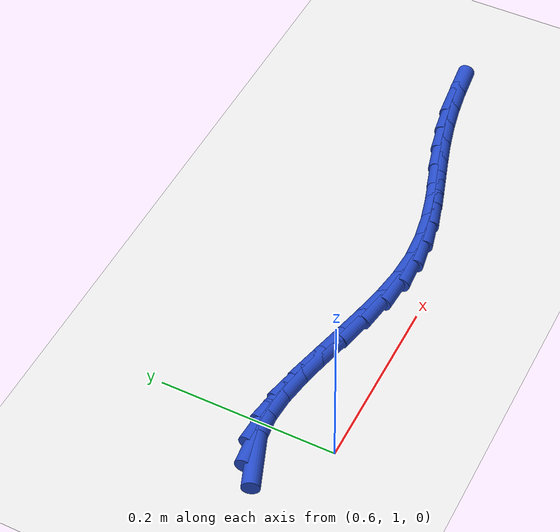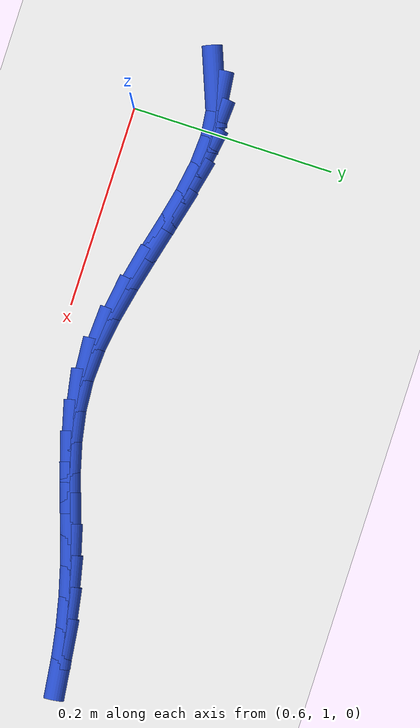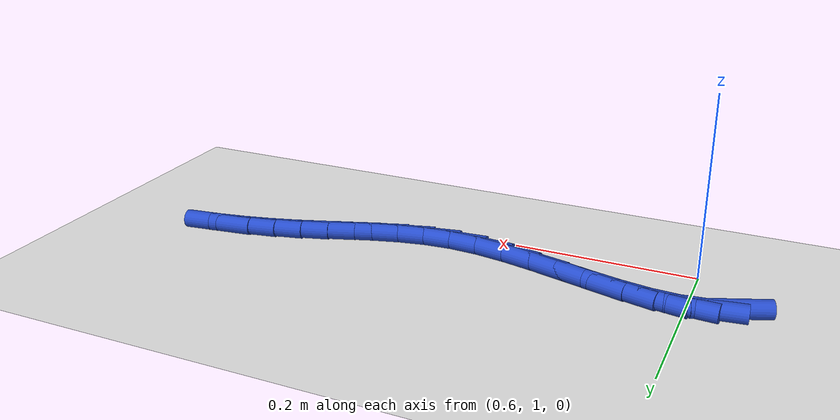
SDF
<sdf version="1.6">
 <world name="default">
  <model name="ground_plane">
   <static>1</static>
   <link name="link">
    <collision name="collision">
     <geometry><plane><normal>0 0 1</normal><size>100 100</size></plane></geometry>
     <surface><friction><ode><mu>100</mu><mu2>50</mu2></ode></friction></surface>
    </collision>
    <visual name="visual">
     <cast_shadows>0</cast_shadows>
     <geometry><plane><normal>0 0 1</normal><size>100 100</size></plane></geometry>
     <material>
      <script><uri>file://media/materials/scripts/gazebo.material</uri><name>Gazebo/WhiteGlow</name></script>
     </material>
    </visual>
   </link>
  </model>
  <model name="line">
   <link name="link_41">
    <pose>0.5571528322739582 1.0678825074071845 0.01 0 1.57 0.3690520572561279</pose>
    <collision name="collision">
     <geometry><cylinder><radius>0.01</radius><length>0.08</length></cylinder></geometry>
    </collision>
    <visual name="visual">
     <material>
      <script><name>Gazebo/Blue</name><uri>file://media/materials/scripts/gazebo.material</uri></script>
     </material>
     <geometry><cylinder><radius>0.01</radius><length>0.08</length></cylinder></geometry>
    </visual>
   </link>
   <link name="link_42">
    <pose>0.5794776001551023 1.0765171251440122 0.01 0 1.57 0.11235421229624952</pose>
    <collision name="collision">
     <geometry><cylinder><radius>0.01</radius><length>0.08</length></cylinder></geometry>
    </collision>
    <visual name="visual">
     <material>
      <script><name>Gazebo/Blue</name><uri>file://media/materials/scripts/gazebo.material</uri></script>
     </material>
     <geometry><cylinder><radius>0.01</radius><length>0.08</length></cylinder></geometry>
    </visual>
   </link>
   <link name="link_43">
    <pose>0.6051560928197762 1.0794144135090438 0.01 0 1.57 -0.05932756533106323</pose>
    <collision name="collision">
     <geometry><cylinder><radius>0.01</radius><length>0.08</length></cylinder></geometry>
    </collision>
    <visual name="visual">
     <material>
      <script><name>Gazebo/Blue</name><uri>file://media/materials/scripts/gazebo.material</uri></script>
     </material>
     <geometry><cylinder><radius>0.01</radius><length>0.08</length></cylinder></geometry>
    </visual>
   </link>
   <link name="link_44">
    <pose>0.6336258750874274 1.0777233861724307 0.01 0 1.57 -0.16558887690210264</pose>
    <collision name="collision">
     <geometry><cylinder><radius>0.01</radius><length>0.08</length></cylinder></geometry>
    </collision>
    <visual name="visual">
     <material>
      <script><name>Gazebo/Blue</name><uri>file://media/materials/scripts/gazebo.material</uri></script>
     </material>
     <geometry><cylinder><radius>0.01</radius><length>0.08</length></cylinder></geometry>
    </visual>
   </link>
   <link name="link_45">
    <pose>0.6643245117775041 1.0725930568043238 0.01 0 1.57 -0.22538321337407694</pose>
    <collision name="collision">
     <geometry><cylinder><radius>0.01</radius><length>0.08</length></cylinder></geometry>
    </collision>
    <visual name="visual">
     <material>
      <script><name>Gazebo/Blue</name><uri>file://media/materials/scripts/gazebo.material</uri></script>
     </material>
     <geometry><cylinder><radius>0.01</radius><length>0.08</length></cylinder></geometry>
    </visual>
   </link>
   <link name="link_46">
    <pose>0.696689567709454 1.065172439074876 0.01 0 1.57 -0.25044435100764334</pose>
    <collision name="collision">
     <geometry><cylinder><radius>0.01</radius><length>0.08</length></cylinder></geometry>
    </collision>
    <visual name="visual">
     <material>
      <script><name>Gazebo/Blue</name><uri>file://media/materials/scripts/gazebo.material</uri></script>
     </material>
     <geometry><cylinder><radius>0.01</radius><length>0.08</length></cylinder></geometry>
    </visual>
   </link>
   <link name="link_47">
    <pose>0.7301586077027259 1.0566105466542386 0.01 0 1.57 -0.24640348835087936</pose>
    <collision name="collision">
     <geometry><cylinder><radius>0.01</radius><length>0.08</length></cylinder></geometry>
    </collision>
    <visual name="visual">
     <material>
      <script><name>Gazebo/Blue</name><uri>file://media/materials/scripts/gazebo.material</uri></script>
     </material>
     <geometry><cylinder><radius>0.01</radius><length>0.08</length></cylinder></geometry>
    </visual>
   </link>
   <link name="link_48">
    <pose>0.7641691965767673 1.0480563932125637 0.01 0 1.57 -0.214294827461099</pose>
    <collision name="collision">
     <geometry><cylinder><radius>0.01</radius><length>0.08</length></cylinder></geometry>
    </collision>
    <visual name="visual">
     <material>
      <script><name>Gazebo/Blue</name><uri>file://media/materials/scripts/gazebo.material</uri></script>
     </material>
     <geometry><cylinder><radius>0.01</radius><length>0.08</length></cylinder></geometry>
    </visual>
   </link>
   <link name="link_49">
    <pose>0.798158899151026 1.040658992420003 0.01 0 1.57 -0.15125099124943975</pose>
    <collision name="collision">
     <geometry><cylinder><radius>0.01</radius><length>0.08</length></cylinder></geometry>
    </collision>
    <visual name="visual">
     <material>
      <script><name>Gazebo/Blue</name><uri>file://media/materials/scripts/gazebo.material</uri></script>
     </material>
     <geometry><cylinder><radius>0.01</radius><length>0.08</length></cylinder></geometry>
    </visual>
   </link>
   <link name="link_50">
    <pose>0.8315652802449507 1.0355673579467077 0.01 0 1.57 -0.05091314864187035</pose>
    <collision name="collision">
     <geometry><cylinder><radius>0.01</radius><length>0.08</length></cylinder></geometry>
    </collision>
    <visual name="visual">
     <material>
      <script><name>Gazebo/Blue</name><uri>file://media/materials/scripts/gazebo.material</uri></script>
     </material>
     <geometry><cylinder><radius>0.01</radius><length>0.08</length></cylinder></geometry>
    </visual>
   </link>
   <link name="link_51">
    <pose>0.8638290824509341 1.0339232853835068 0.01 0 1.57 0.07329513712206373</pose>
    <collision name="collision">
     <geometry><cylinder><radius>0.01</radius><length>0.08</length></cylinder></geometry>
    </collision>
    <visual name="visual">
     <material>
      <script><name>Gazebo/Blue</name><uri>file://media/materials/scripts/gazebo.material</uri></script>
     </material>
     <geometry><cylinder><radius>0.01</radius><length>0.08</length></cylinder></geometry>
    </visual>
   </link>
   <link name="link_52">
    <pose>0.8946900953837537 1.0361893068350465 0.01 0 1.57 0.18004484692380715</pose>
    <collision name="collision">
     <geometry><cylinder><radius>0.01</radius><length>0.08</length></cylinder></geometry>
    </collision>
    <visual name="visual">
     <material>
      <script><name>Gazebo/Blue</name><uri>file://media/materials/scripts/gazebo.material</uri></script>
     </material>
     <geometry><cylinder><radius>0.01</radius><length>0.08</length></cylinder></geometry>
    </visual>
   </link>
   <link name="link_53">
    <pose>0.924427817997376 1.0416020440312794 0.01 0 1.57 0.2589014758136229</pose>
    <collision name="collision">
     <geometry><cylinder><radius>0.01</radius><length>0.08</length></cylinder></geometry>
    </collision>
    <visual name="visual">
     <material>
      <script><name>Gazebo/Blue</name><uri>file://media/materials/scripts/gazebo.material</uri></script>
     </material>
     <geometry><cylinder><radius>0.01</radius><length>0.08</length></cylinder></geometry>
    </visual>
   </link>
   <link name="link_54">
    <pose>0.9533783849188437 1.0492694749041707 0.01 0 1.57 0.3068436168448405</pose>
    <collision name="collision">
     <geometry><cylinder><radius>0.01</radius><length>0.08</length></cylinder></geometry>
    </collision>
    <visual name="visual">
     <material>
      <script><name>Gazebo/Blue</name><uri>file://media/materials/scripts/gazebo.material</uri></script>
     </material>
     <geometry><cylinder><radius>0.01</radius><length>0.08</length></cylinder></geometry>
    </visual>
   </link>
   <link name="link_55">
    <pose>0.9818779307751996 1.0582995773856865 0.01 0 1.57 0.32299292851977285</pose>
    <collision name="collision">
     <geometry><cylinder><radius>0.01</radius><length>0.08</length></cylinder></geometry>
    </collision>
    <visual name="visual">
     <material>
      <script><name>Gazebo/Blue</name><uri>file://media/materials/scripts/gazebo.material</uri></script>
     </material>
     <geometry><cylinder><radius>0.01</radius><length>0.08</length></cylinder></geometry>
    </visual>
   </link>
   <link name="link_56">
    <pose>1.0102625901934863 1.0678003294077925 0.01 0 1.57 0.3073383712178518</pose>
    <collision name="collision">
     <geometry><cylinder><radius>0.01</radius><length>0.08</length></cylinder></geometry>
    </collision>
    <visual name="visual">
     <material>
      <script><name>Gazebo/Blue</name><uri>file://media/materials/scripts/gazebo.material</uri></script>
     </material>
     <geometry><cylinder><radius>0.01</radius><length>0.08</length></cylinder></geometry>
    </visual>
   </link>
   <link name="link_57">
    <pose>1.0388684978007463 1.0768797089024544 0.01 0 1.57 0.2641203409737604</pose>
    <collision name="collision">
     <geometry><cylinder><radius>0.01</radius><length>0.08</length></cylinder></geometry>
    </collision>
    <visual name="visual">
     <material>
      <script><name>Gazebo/Blue</name><uri>file://media/materials/scripts/gazebo.material</uri></script>
     </material>
     <geometry><cylinder><radius>0.01</radius><length>0.08</length></cylinder></geometry>
    </visual>
   </link>
   <link name="link_58">
    <pose>1.0679804180354708 1.0847526881396043 0.01 0 1.57 0.21522861653261816</pose>
    <collision name="collision">
     <geometry><cylinder><radius>0.01</radius><length>0.08</length></cylinder></geometry>
    </collision>
    <visual name="visual">
     <material>
      <script><name>Gazebo/Blue</name><uri>file://media/materials/scripts/gazebo.material</uri></script>
     </material>
     <geometry><cylinder><radius>0.01</radius><length>0.08</length></cylinder></geometry>
    </visual>
   </link>
   <link name="link_59">
    <pose>1.097598239940221 1.091227580687883 0.01 0 1.57 0.1679145571799948</pose>
    <collision name="collision">
     <geometry><cylinder><radius>0.01</radius><length>0.08</length></cylinder></geometry>
    </collision>
    <visual name="visual">
     <material>
      <script><name>Gazebo/Blue</name><uri>file://media/materials/scripts/gazebo.material</uri></script>
     </material>
     <geometry><cylinder><radius>0.01</radius><length>0.08</length></cylinder></geometry>
    </visual>
   </link>
   <link name="link_60">
    <pose>1.1276236626847076 1.0963172109564971 0.01 0 1.57 0.12193788058899117</pose>
    <collision name="collision">
     <geometry><cylinder><radius>0.01</radius><length>0.08</length></cylinder></geometry>
    </collision>
    <visual name="visual">
     <material>
      <script><name>Gazebo/Blue</name><uri>file://media/materials/scripts/gazebo.material</uri></script>
     </material>
     <geometry><cylinder><radius>0.01</radius><length>0.08</length></cylinder></geometry>
    </visual>
   </link>
  </model>
 </world>
</sdf>
